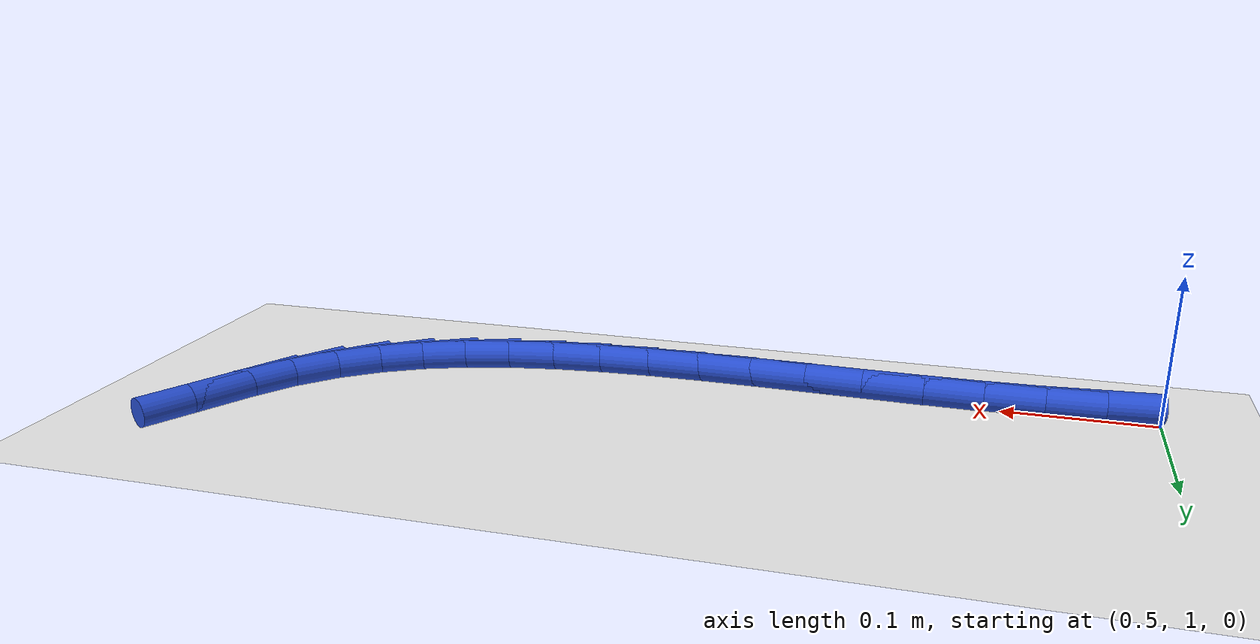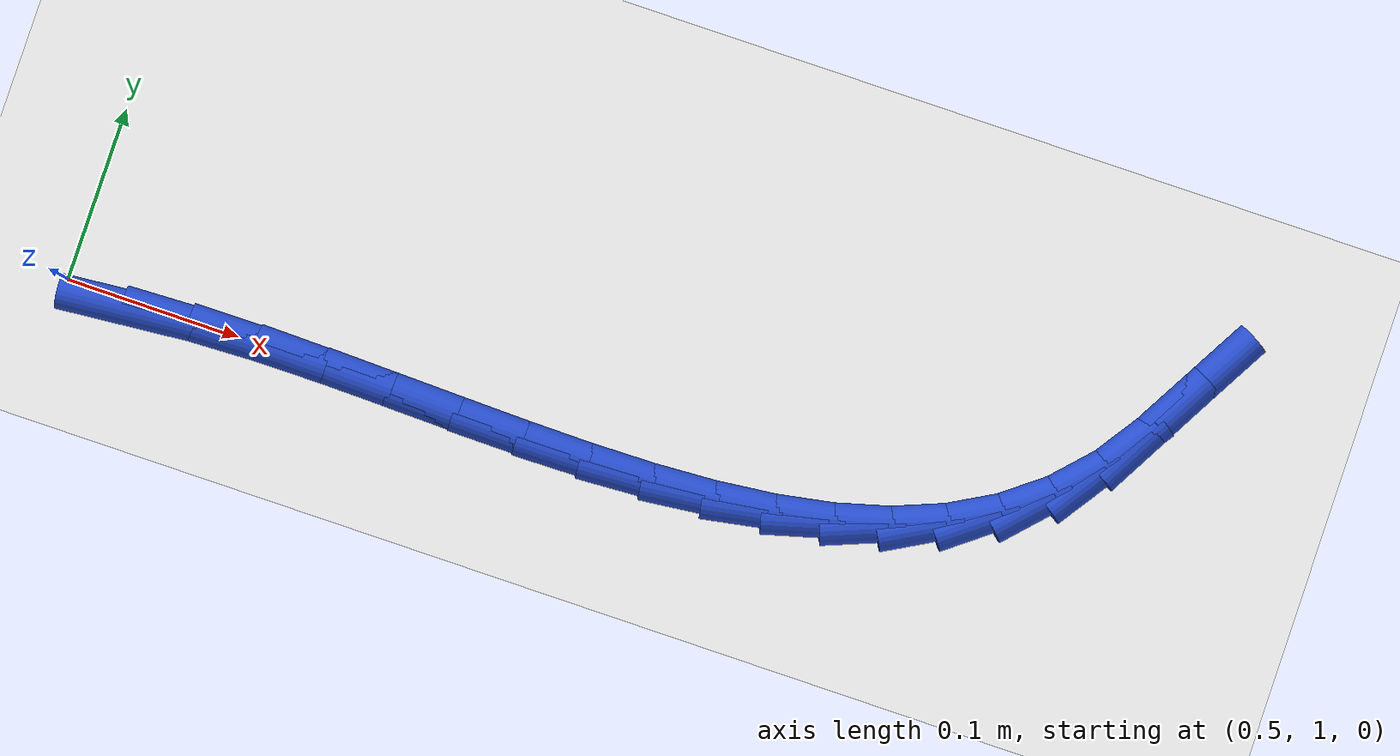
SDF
<sdf version="1.6">
 <world name="default">
  <model name="ground_plane">
   <static>1</static>
   <link name="link">
    <collision name="collision">
     <geometry><plane><normal>0 0 1</normal><size>100 100</size></plane></geometry>
     <surface><friction><ode><mu>100</mu><mu2>50</mu2></ode></friction></surface>
    </collision>
    <visual name="visual">
     <cast_shadows>0</cast_shadows>
     <geometry><plane><normal>0 0 1</normal><size>100 100</size></plane></geometry>
     <material>
      <script><uri>file://media/materials/scripts/gazebo.material</uri><name>Gazebo/WhiteGlow</name></script>
     </material>
    </visual>
   </link>
  </model>
  <model name="line">
   <link name="link_37">
    <pose>0.5380115042579448 0.9956950592957591 0.01 0 1.57 0.08491542475617707</pose>
    <collision name="collision">
     <geometry><cylinder><radius>0.01</radius><length>0.08</length></cylinder></geometry>
    </collision>
    <visual name="visual">
     <material>
      <script><name>Gazebo/Blue</name><uri>file://media/materials/scripts/gazebo.material</uri></script>
     </material>
     <geometry><cylinder><radius>0.01</radius><length>0.08</length></cylinder></geometry>
    </visual>
   </link>
   <link name="link_38">
    <pose>0.5744069259443979 0.9987930417036291 0.01 0 1.57 0.034247013977091297</pose>
    <collision name="collision">
     <geometry><cylinder><radius>0.01</radius><length>0.08</length></cylinder></geometry>
    </collision>
    <visual name="visual">
     <material>
      <script><name>Gazebo/Blue</name><uri>file://media/materials/scripts/gazebo.material</uri></script>
     </material>
     <geometry><cylinder><radius>0.01</radius><length>0.08</length></cylinder></geometry>
    </visual>
   </link>
   <link name="link_39">
    <pose>0.612296477896694 1.0000911532587708 0.01 0 1.57 0.0006573134919392366</pose>
    <collision name="collision">
     <geometry><cylinder><radius>0.01</radius><length>0.08</length></cylinder></geometry>
    </collision>
    <visual name="visual">
     <material>
      <script><name>Gazebo/Blue</name><uri>file://media/materials/scripts/gazebo.material</uri></script>
     </material>
     <geometry><cylinder><radius>0.01</radius><length>0.08</length></cylinder></geometry>
    </visual>
   </link>
   <link name="link_40">
    <pose>0.6509994350216592 1.000116593238331 0.01 0 1.57 -0.018804038210180195</pose>
    <collision name="collision">
     <geometry><cylinder><radius>0.01</radius><length>0.08</length></cylinder></geometry>
    </collision>
    <visual name="visual">
     <material>
      <script><name>Gazebo/Blue</name><uri>file://media/materials/scripts/gazebo.material</uri></script>
     </material>
     <geometry><cylinder><radius>0.01</radius><length>0.08</length></cylinder></geometry>
    </visual>
   </link>
   <link name="link_41">
    <pose>0.6898808395212194 0.9993853796366999 0.01 0 1.57 -0.02692615971927765</pose>
    <collision name="collision">
     <geometry><cylinder><radius>0.01</radius><length>0.08</length></cylinder></geometry>
    </collision>
    <visual name="visual">
     <material>
      <script><name>Gazebo/Blue</name><uri>file://media/materials/scripts/gazebo.material</uri></script>
     </material>
     <geometry><cylinder><radius>0.01</radius><length>0.08</length></cylinder></geometry>
    </visual>
   </link>
   <link name="link_42">
    <pose>0.7285957203892466 0.9983426845678293 0.01 0 1.57 -0.024440593419900875</pose>
    <collision name="collision">
     <geometry><cylinder><radius>0.01</radius><length>0.08</length></cylinder></geometry>
    </collision>
    <visual name="visual">
     <material>
      <script><name>Gazebo/Blue</name><uri>file://media/materials/scripts/gazebo.material</uri></script>
     </material>
     <geometry><cylinder><radius>0.01</radius><length>0.08</length></cylinder></geometry>
    </visual>
   </link>
   <link name="link_43">
    <pose>0.7669123366913767 0.9974060172163626 0.01 0 1.57 -0.01096342779789743</pose>
    <collision name="collision">
     <geometry><cylinder><radius>0.01</radius><length>0.08</length></cylinder></geometry>
    </collision>
    <visual name="visual">
     <material>
      <script><name>Gazebo/Blue</name><uri>file://media/materials/scripts/gazebo.material</uri></script>
     </material>
     <geometry><cylinder><radius>0.01</radius><length>0.08</length></cylinder></geometry>
    </visual>
   </link>
   <link name="link_44">
    <pose>0.8045992069474439 0.9969928233803969 0.01 0 1.57 0.014329399799486206</pose>
    <collision name="collision">
     <geometry><cylinder><radius>0.01</radius><length>0.08</length></cylinder></geometry>
    </collision>
    <visual name="visual">
     <material>
      <script><name>Gazebo/Blue</name><uri>file://media/materials/scripts/gazebo.material</uri></script>
     </material>
     <geometry><cylinder><radius>0.01</radius><length>0.08</length></cylinder></geometry>
    </visual>
   </link>
   <link name="link_45">
    <pose>0.8414248496772821 0.9975205488580298 0.01 0 1.57 0.05273403941169539</pose>
    <collision name="collision">
     <geometry><cylinder><radius>0.01</radius><length>0.08</length></cylinder></geometry>
    </collision>
    <visual name="visual">
     <material>
      <script><name>Gazebo/Blue</name><uri>file://media/materials/scripts/gazebo.material</uri></script>
     </material>
     <geometry><cylinder><radius>0.01</radius><length>0.08</length></cylinder></geometry>
    </visual>
   </link>
   <link name="link_46">
    <pose>0.8771577834007256 0.9994066394473585 0.01 0 1.57 0.10602450073112599</pose>
    <collision name="collision">
     <geometry><cylinder><radius>0.01</radius><length>0.08</length></cylinder></geometry>
    </collision>
    <visual name="visual">
     <material>
      <script><name>Gazebo/Blue</name><uri>file://media/materials/scripts/gazebo.material</uri></script>
     </material>
     <geometry><cylinder><radius>0.01</radius><length>0.08</length></cylinder></geometry>
    </visual>
   </link>
   <link name="link_47">
    <pose>0.9115665266376078 1.0030685409464801 0.01 0 1.57 0.17637074032755815</pose>
    <collision name="collision">
     <geometry><cylinder><radius>0.01</radius><length>0.08</length></cylinder></geometry>
    </collision>
    <visual name="visual">
     <material>
      <script><name>Gazebo/Blue</name><uri>file://media/materials/scripts/gazebo.material</uri></script>
     </material>
     <geometry><cylinder><radius>0.01</radius><length>0.08</length></cylinder></geometry>
    </visual>
   </link>
   <link name="link_48">
    <pose>0.9444195979077632 1.0089236991534922 0.01 0 1.57 0.26605242752533</pose>
    <collision name="collision">
     <geometry><cylinder><radius>0.01</radius><length>0.08</length></cylinder></geometry>
    </collision>
    <visual name="visual">
     <material>
      <script><name>Gazebo/Blue</name><uri>file://media/materials/scripts/gazebo.material</uri></script>
     </material>
     <geometry><cylinder><radius>0.01</radius><length>0.08</length></cylinder></geometry>
    </visual>
   </link>
   <link name="link_49">
    <pose>0.9754855157310255 1.0173895598664922 0.01 0 1.57 0.3767939684651764</pose>
    <collision name="collision">
     <geometry><cylinder><radius>0.01</radius><length>0.08</length></cylinder></geometry>
    </collision>
    <visual name="visual">
     <material>
      <script><name>Gazebo/Blue</name><uri>file://media/materials/scripts/gazebo.material</uri></script>
     </material>
     <geometry><cylinder><radius>0.01</radius><length>0.08</length></cylinder></geometry>
    </visual>
   </link>
   <link name="link_50">
    <pose>1.0045327986272288 1.0288835688835767 0.01 0 1.57 0.5085883310137791</pose>
    <collision name="collision">
     <geometry><cylinder><radius>0.01</radius><length>0.08</length></cylinder></geometry>
    </collision>
    <visual name="visual">
     <material>
      <script><name>Gazebo/Blue</name><uri>file://media/materials/scripts/gazebo.material</uri></script>
     </material>
     <geometry><cylinder><radius>0.01</radius><length>0.08</length></cylinder></geometry>
    </visual>
   </link>
   <link name="link_51">
    <pose>1.0313299651162073 1.0438231720028437 0.01 0 1.57 0.6582320225758695</pose>
    <collision name="collision">
     <geometry><cylinder><radius>0.01</radius><length>0.08</length></cylinder></geometry>
    </collision>
    <visual name="visual">
     <material>
      <script><name>Gazebo/Blue</name><uri>file://media/materials/scripts/gazebo.material</uri></script>
     </material>
     <geometry><cylinder><radius>0.01</radius><length>0.08</length></cylinder></geometry>
    </visual>
   </link>
   <link name="link_52">
    <pose>1.0556455337177948 1.06262581502239 0.01 0 1.57 0.818520631951938</pose>
    <collision name="collision">
     <geometry><cylinder><radius>0.01</radius><length>0.08</length></cylinder></geometry>
    </collision>
    <visual name="visual">
     <material>
      <script><name>Gazebo/Blue</name><uri>file://media/materials/scripts/gazebo.material</uri></script>
     </material>
     <geometry><cylinder><radius>0.01</radius><length>0.08</length></cylinder></geometry>
    </visual>
   </link>
   <link name="link_53">
    <pose>1.0772480229518255 1.0857089437403136 0.01 0 1.57 0.974031176421292</pose>
    <collision name="collision">
     <geometry><cylinder><radius>0.01</radius><length>0.08</length></cylinder></geometry>
    </collision>
    <visual name="visual">
     <material>
      <script><name>Gazebo/Blue</name><uri>file://media/materials/scripts/gazebo.material</uri></script>
     </material>
     <geometry><cylinder><radius>0.01</radius><length>0.08</length></cylinder></geometry>
    </visual>
   </link>
   <link name="link_54">
    <pose>1.0960052413835928 1.1133175147934362 0.01 0 1.57 1.0609677081710676</pose>
    <collision name="collision">
     <geometry><cylinder><radius>0.01</radius><length>0.08</length></cylinder></geometry>
    </collision>
    <visual name="visual">
     <material>
      <script><name>Gazebo/Blue</name><uri>file://media/materials/scripts/gazebo.material</uri></script>
     </material>
     <geometry><cylinder><radius>0.01</radius><length>0.08</length></cylinder></geometry>
    </visual>
   </link>
   <link name="link_55">
    <pose>1.1129641025677646 1.1436481140102965 0.01 0 1.57 1.0544158243072181</pose>
    <collision name="collision">
     <geometry><cylinder><radius>0.01</radius><length>0.08</length></cylinder></geometry>
    </collision>
    <visual name="visual">
     <material>
      <script><name>Gazebo/Blue</name><uri>file://media/materials/scripts/gazebo.material</uri></script>
     </material>
     <geometry><cylinder><radius>0.01</radius><length>0.08</length></cylinder></geometry>
    </visual>
   </link>
  </model>
 </world>
</sdf>
